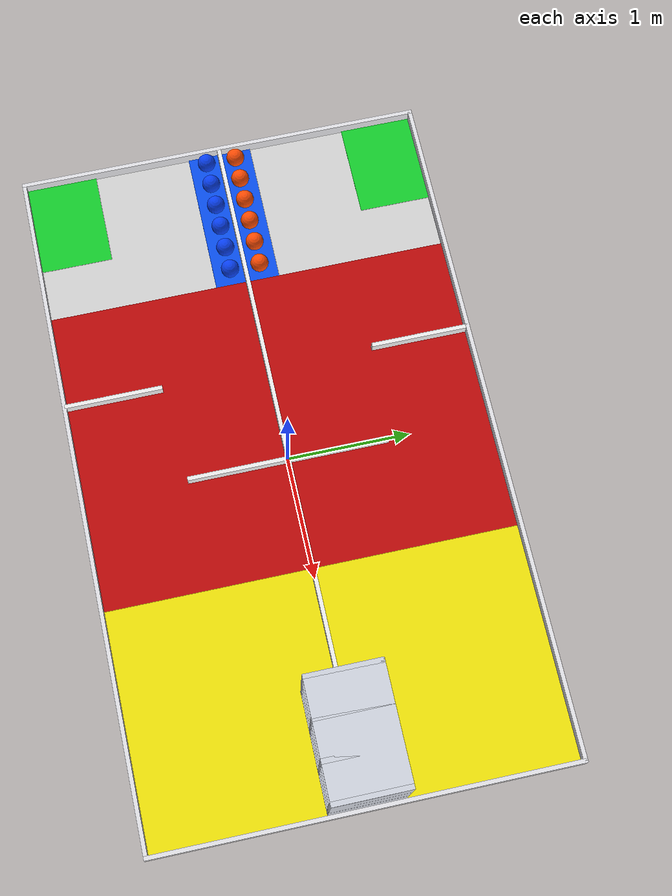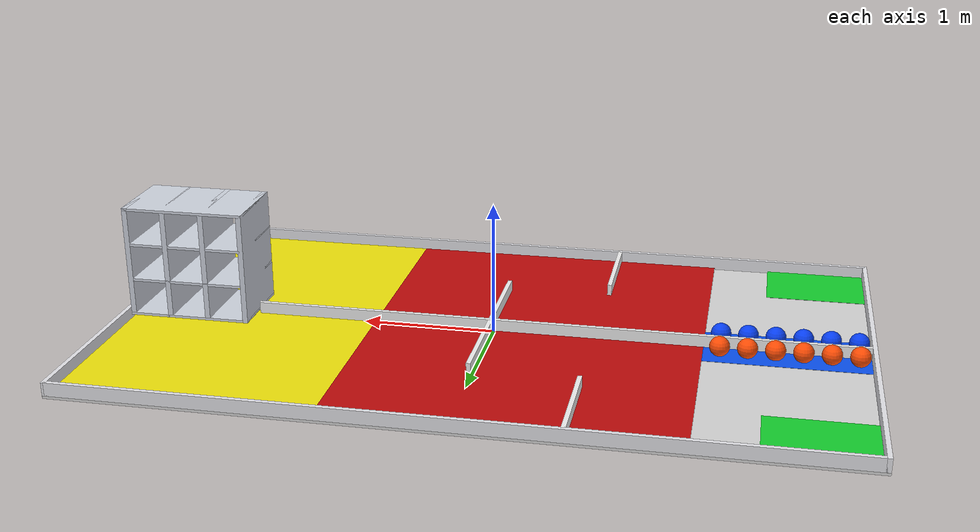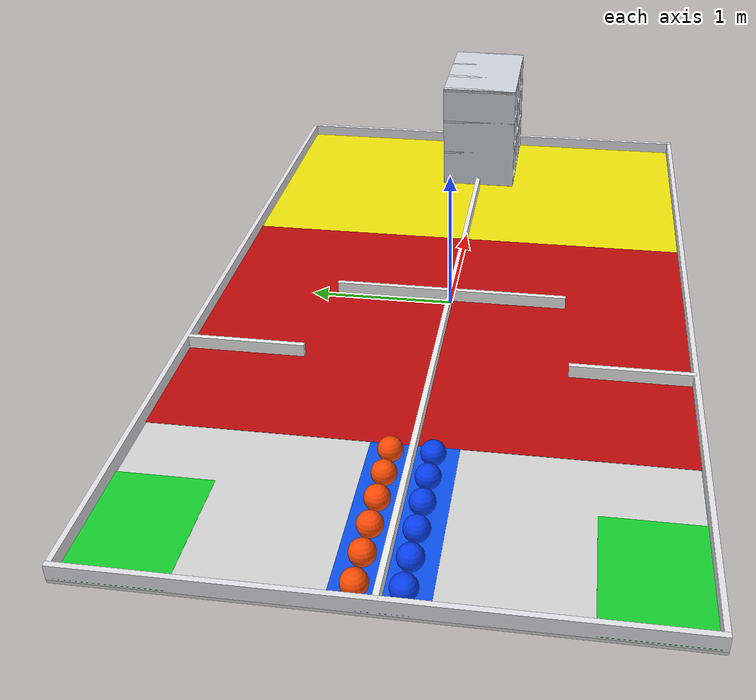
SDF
<?xml version="1.0"?>
<sdf version="1.9">
  <world name="robocon2026">
    <!-- Field-only validation does not need the 1 kHz integration used by
         the IMU model.  250 Hz is sufficient for 150 mm / 200 g notes and
         cuts idle rigid-body work to one quarter. -->
    <physics name="4ms_low_cpu" type="ignored">
      <max_step_size>0.004</max_step_size>
      <real_time_factor>1.0</real_time_factor>
      <real_time_update_rate>250</real_time_update_rate>
    </physics>
    <plugin filename="gz-sim-physics-system" name="gz::sim::systems::Physics"/>
    <plugin filename="gz-sim-user-commands-system" name="gz::sim::systems::UserCommands"/>
    <plugin filename="gz-sim-scene-broadcaster-system" name="gz::sim::systems::SceneBroadcaster">
      <!-- 15 Hz is sufficient for field inspection and avoids 60 Hz GUI state traffic. -->
      <state_hertz>15</state_hertz>
    </plugin>
    <gravity>0 0 -9.80665</gravity>
    <scene><ambient>0.8 0.8 0.8 1</ambient><background>0.65 0.78 0.9 1</background><shadows>false</shadows></scene>
    <light type="directional" name="sun"><pose>0 0 10 0 0 0</pose><direction>-0.4 0.2 -1</direction><diffuse>1 1 1 1</diffuse><cast_shadows>false</cast_shadows></light>
    <!-- Static-inspection GUI: avoid the heavyweight default plugin set. -->
    <gui fullscreen="0">
      <plugin filename="MinimalScene" name="3D View">
        <gz-gui><title>Robocon 2026 Field</title><property type="bool" key="showTitleBar">false</property><property type="string" key="state">docked</property></gz-gui>
        <engine>ogre2</engine><scene>scene</scene>
        <ambient_light>0.8 0.8 0.8</ambient_light><background_color>0.65 0.78 0.9</background_color>
        <camera_pose>-6 -6 7 0 0.72 0.78</camera_pose>
      </plugin>
      <plugin filename="GzSceneManager" name="Scene Manager"/>
    </gui>

    <!-- Coordinate convention: +X start -> bingo, +Y left, origin at field centre. -->
    <model name="competition_floor"><static>true</static><link name="floor">
      <collision name="floor_collision"><pose>0 0 -0.01 0 0 0</pose><geometry><box><size>5.638 3.376 0.02</size></box></geometry></collision>
      <visual name="base"><pose>0 0 -0.01 0 0 0</pose><geometry><box><size>5.638 3.376 0.02</size></box></geometry><material><ambient>0.72 0.72 0.72 1</ambient><diffuse>0.84 0.84 0.84 1</diffuse></material></visual>
      <!-- Zone overlays are visual-only and sit 11 mm above the base. -->
      <visual name="start_left"><pose>-2.419 1.369 0.011 0 0 0</pose><geometry><box><size>0.800 0.600 0.002</size></box></geometry><material><ambient>0.05 0.55 0.12 1</ambient><diffuse>0.08 0.82 0.18 1</diffuse></material></visual>
      <visual name="start_right"><pose>-2.419 -1.369 0.011 0 0 0</pose><geometry><box><size>0.800 0.600 0.002</size></box></geometry><material><ambient>0.05 0.55 0.12 1</ambient><diffuse>0.08 0.82 0.18 1</diffuse></material></visual>
      <visual name="notes_left"><pose>-2.199 0.1415 0.011 0 0 0</pose><geometry><box><size>1.240 0.250 0.002</size></box></geometry><material><ambient>0.03 0.20 0.62 1</ambient><diffuse>0.04 0.32 0.95 1</diffuse></material></visual>
      <visual name="notes_right"><pose>-2.199 -0.1415 0.011 0 0 0</pose><geometry><box><size>1.240 0.250 0.002</size></box></geometry><material><ambient>0.03 0.20 0.62 1</ambient><diffuse>0.04 0.32 0.95 1</diffuse></material></visual>
      <visual name="slalom"><pose>-0.330 0 0.011 0 0 0</pose><geometry><box><size>2.498 3.343 0.002</size></box></geometry><material><ambient>0.55 0.03 0.03 1</ambient><diffuse>0.75 0.04 0.04 1</diffuse></material></visual>
      <visual name="goal"><pose>1.869 0 0.011 0 0 0</pose><geometry><box><size>1.900 3.343 0.002</size></box></geometry><material><ambient>0.72 0.68 0.02 1</ambient><diffuse>0.95 0.90 0.04 1</diffuse></material></visual>
    </link></model>

    <!-- The dimensioned overhead drawing's 33 mm width is used.  Rule text
         section 3.2 separately says 38 mm; the conflict remains documented. -->
    <model name="field_walls"><static>true</static><link name="walls">
      <collision name="start_end"><pose>-2.8025 0 0.05 0 0 0</pose><geometry><box><size>0.033 3.376 0.1</size></box></geometry></collision>
      <collision name="bingo_end"><pose>2.8025 0 0.05 0 0 0</pose><geometry><box><size>0.033 3.376 0.1</size></box></geometry></collision>
      <collision name="left_side"><pose>0 1.6715 0.05 0 0 0</pose><geometry><box><size>5.605 0.033 0.1</size></box></geometry></collision>
      <collision name="right_side"><pose>0 -1.6715 0.05 0 0 0</pose><geometry><box><size>5.605 0.033 0.1</size></box></geometry></collision>
      <collision name="centre_to_bingo"><pose>-0.47825 0 0.05 0 0 0</pose><geometry><box><size>4.6485 0.033 0.1</size></box></geometry></collision>
      <!-- Three 800 mm slalom cells require two internal baffles per lane. -->
      <collision name="baffle_l1"><pose>-0.779 1.269 0.05 0 0 0</pose><geometry><box><size>0.033 0.800 0.1</size></box></geometry></collision>
      <collision name="baffle_r1"><pose>-0.779 -1.269 0.05 0 0 0</pose><geometry><box><size>0.033 0.800 0.1</size></box></geometry></collision>
      <collision name="baffle_l2"><pose>0.021 0.419 0.05 0 0 0</pose><geometry><box><size>0.033 0.800 0.1</size></box></geometry></collision>
      <collision name="baffle_r2"><pose>0.021 -0.419 0.05 0 0 0</pose><geometry><box><size>0.033 0.800 0.1</size></box></geometry></collision>
      <visual name="wall_visual"><geometry><box><size>0.001 0.001 0.001</size></box></geometry></visual>
      <visual name="v_start_end"><pose>-2.8025 0 0.05 0 0 0</pose><geometry><box><size>0.033 3.376 0.1</size></box></geometry><material><diffuse>0.9 0.9 0.92 1</diffuse></material></visual>
      <visual name="v_bingo_end"><pose>2.8025 0 0.05 0 0 0</pose><geometry><box><size>0.033 3.376 0.1</size></box></geometry><material><diffuse>0.9 0.9 0.92 1</diffuse></material></visual>
      <visual name="v_left_side"><pose>0 1.6715 0.05 0 0 0</pose><geometry><box><size>5.605 0.033 0.1</size></box></geometry><material><diffuse>0.9 0.9 0.92 1</diffuse></material></visual>
      <visual name="v_right_side"><pose>0 -1.6715 0.05 0 0 0</pose><geometry><box><size>5.605 0.033 0.1</size></box></geometry><material><diffuse>0.9 0.9 0.92 1</diffuse></material></visual>
      <visual name="v_centre_to_bingo"><pose>-0.47825 0 0.05 0 0 0</pose><geometry><box><size>4.6485 0.033 0.1</size></box></geometry><material><diffuse>0.95 0.95 0.95 1</diffuse></material></visual>
      <visual name="v_l1"><pose>-0.779 1.269 0.05 0 0 0</pose><geometry><box><size>0.033 0.800 0.1</size></box></geometry><material><diffuse>0.95 0.95 0.95 1</diffuse></material></visual>
      <visual name="v_r1"><pose>-0.779 -1.269 0.05 0 0 0</pose><geometry><box><size>0.033 0.800 0.1</size></box></geometry><material><diffuse>0.95 0.95 0.95 1</diffuse></material></visual>
      <visual name="v_l2"><pose>0.021 0.419 0.05 0 0 0</pose><geometry><box><size>0.033 0.800 0.1</size></box></geometry><material><diffuse>0.95 0.95 0.95 1</diffuse></material></visual>
      <visual name="v_r2"><pose>0.021 -0.419 0.05 0 0 0</pose><geometry><box><size>0.033 0.800 0.1</size></box></geometry><material><diffuse>0.95 0.95 0.95 1</diffuse></material></visual>
    </link></model>

    <model name="bingo"><static>true</static><pose>2.316 0 0 0 0 0</pose><link name="frame">
      <!-- Posts span z=40..900 mm; shelf gaps are exactly 260 mm. -->
      <collision name="post0"><pose>-0.45 0 0.47 0 0 0</pose><geometry><box><size>0.04 0.60 0.86</size></box></geometry></collision><visual name="post0v"><pose>-0.45 0 0.47 0 0 0</pose><geometry><box><size>0.04 0.60 0.86</size></box></geometry><material><diffuse>0.82 0.84 0.88 1</diffuse></material></visual>
      <collision name="post1"><pose>-0.15 0 0.47 0 0 0</pose><geometry><box><size>0.04 0.60 0.86</size></box></geometry></collision><visual name="post1v"><pose>-0.15 0 0.47 0 0 0</pose><geometry><box><size>0.04 0.60 0.86</size></box></geometry><material><diffuse>0.82 0.84 0.88 1</diffuse></material></visual>
      <collision name="post2"><pose>0.15 0 0.47 0 0 0</pose><geometry><box><size>0.04 0.60 0.86</size></box></geometry></collision><visual name="post2v"><pose>0.15 0 0.47 0 0 0</pose><geometry><box><size>0.04 0.60 0.86</size></box></geometry><material><diffuse>0.82 0.84 0.88 1</diffuse></material></visual>
      <collision name="post3"><pose>0.45 0 0.47 0 0 0</pose><geometry><box><size>0.04 0.60 0.86</size></box></geometry></collision><visual name="post3v"><pose>0.45 0 0.47 0 0 0</pose><geometry><box><size>0.04 0.60 0.86</size></box></geometry><material><diffuse>0.82 0.84 0.88 1</diffuse></material></visual>
      <collision name="shelf0"><pose>0 0 0.05 0 0 0</pose><geometry><box><size>0.94 0.60 0.02</size></box></geometry></collision><visual name="shelf0v"><pose>0 0 0.05 0 0 0</pose><geometry><box><size>0.94 0.60 0.02</size></box></geometry><material><diffuse>0.82 0.84 0.88 1</diffuse></material></visual>
      <collision name="shelf1"><pose>0 0 0.33 0 0 0</pose><geometry><box><size>0.94 0.60 0.02</size></box></geometry></collision><visual name="shelf1v"><pose>0 0 0.33 0 0 0</pose><geometry><box><size>0.94 0.60 0.02</size></box></geometry><material><diffuse>0.82 0.84 0.88 1</diffuse></material></visual>
      <collision name="shelf2"><pose>0 0 0.61 0 0 0</pose><geometry><box><size>0.94 0.60 0.02</size></box></geometry></collision><visual name="shelf2v"><pose>0 0 0.61 0 0 0</pose><geometry><box><size>0.94 0.60 0.02</size></box></geometry><material><diffuse>0.82 0.84 0.88 1</diffuse></material></visual>
      <collision name="shelf3"><pose>0 0 0.89 0 0 0</pose><geometry><box><size>0.94 0.60 0.02</size></box></geometry></collision><visual name="shelf3v"><pose>0 0 0.89 0 0 0</pose><geometry><box><size>0.94 0.60 0.02</size></box></geometry><material><diffuse>0.82 0.84 0.88 1</diffuse></material></visual>
    </link></model>

    <!-- Six 150 mm / 200 g notes per team, equally spaced on the two 250 mm
         notes strips beside the centre wall as shown by the overhead view. -->
    <model name="blue_note_0"><pose>-2.699 -0.125 0.075 0 0 0</pose><link name="note"><inertial><mass>0.2</mass><inertia><ixx>0.00045</ixx><iyy>0.00045</iyy><izz>0.00045</izz></inertia></inertial><collision name="c"><geometry><sphere><radius>0.075</radius></sphere></geometry></collision><visual name="v"><geometry><sphere><radius>0.075</radius></sphere></geometry><material><diffuse>0.03 0.25 0.95 1</diffuse></material></visual></link></model>
    <model name="blue_note_1"><pose>-2.499 -0.125 0.075 0 0 0</pose><link name="note"><inertial><mass>0.2</mass><inertia><ixx>0.00045</ixx><iyy>0.00045</iyy><izz>0.00045</izz></inertia></inertial><collision name="c"><geometry><sphere><radius>0.075</radius></sphere></geometry></collision><visual name="v"><geometry><sphere><radius>0.075</radius></sphere></geometry><material><diffuse>0.03 0.25 0.95 1</diffuse></material></visual></link></model>
    <model name="blue_note_2"><pose>-2.299 -0.125 0.075 0 0 0</pose><link name="note"><inertial><mass>0.2</mass><inertia><ixx>0.00045</ixx><iyy>0.00045</iyy><izz>0.00045</izz></inertia></inertial><collision name="c"><geometry><sphere><radius>0.075</radius></sphere></geometry></collision><visual name="v"><geometry><sphere><radius>0.075</radius></sphere></geometry><material><diffuse>0.03 0.25 0.95 1</diffuse></material></visual></link></model>
    <model name="blue_note_3"><pose>-2.099 -0.125 0.075 0 0 0</pose><link name="note"><inertial><mass>0.2</mass><inertia><ixx>0.00045</ixx><iyy>0.00045</iyy><izz>0.00045</izz></inertia></inertial><collision name="c"><geometry><sphere><radius>0.075</radius></sphere></geometry></collision><visual name="v"><geometry><sphere><radius>0.075</radius></sphere></geometry><material><diffuse>0.03 0.25 0.95 1</diffuse></material></visual></link></model>
    <model name="blue_note_4"><pose>-1.899 -0.125 0.075 0 0 0</pose><link name="note"><inertial><mass>0.2</mass><inertia><ixx>0.00045</ixx><iyy>0.00045</iyy><izz>0.00045</izz></inertia></inertial><collision name="c"><geometry><sphere><radius>0.075</radius></sphere></geometry></collision><visual name="v"><geometry><sphere><radius>0.075</radius></sphere></geometry><material><diffuse>0.03 0.25 0.95 1</diffuse></material></visual></link></model>
    <model name="blue_note_5"><pose>-1.699 -0.125 0.075 0 0 0</pose><link name="note"><inertial><mass>0.2</mass><inertia><ixx>0.00045</ixx><iyy>0.00045</iyy><izz>0.00045</izz></inertia></inertial><collision name="c"><geometry><sphere><radius>0.075</radius></sphere></geometry></collision><visual name="v"><geometry><sphere><radius>0.075</radius></sphere></geometry><material><diffuse>0.03 0.25 0.95 1</diffuse></material></visual></link></model>
    <model name="orange_note_0"><pose>-2.699 0.125 0.075 0 0 0</pose><link name="note"><inertial><mass>0.2</mass><inertia><ixx>0.00045</ixx><iyy>0.00045</iyy><izz>0.00045</izz></inertia></inertial><collision name="c"><geometry><sphere><radius>0.075</radius></sphere></geometry></collision><visual name="v"><geometry><sphere><radius>0.075</radius></sphere></geometry><material><diffuse>1 0.30 0.02 1</diffuse></material></visual></link></model>
    <model name="orange_note_1"><pose>-2.499 0.125 0.075 0 0 0</pose><link name="note"><inertial><mass>0.2</mass><inertia><ixx>0.00045</ixx><iyy>0.00045</iyy><izz>0.00045</izz></inertia></inertial><collision name="c"><geometry><sphere><radius>0.075</radius></sphere></geometry></collision><visual name="v"><geometry><sphere><radius>0.075</radius></sphere></geometry><material><diffuse>1 0.30 0.02 1</diffuse></material></visual></link></model>
    <model name="orange_note_2"><pose>-2.299 0.125 0.075 0 0 0</pose><link name="note"><inertial><mass>0.2</mass><inertia><ixx>0.00045</ixx><iyy>0.00045</iyy><izz>0.00045</izz></inertia></inertial><collision name="c"><geometry><sphere><radius>0.075</radius></sphere></geometry></collision><visual name="v"><geometry><sphere><radius>0.075</radius></sphere></geometry><material><diffuse>1 0.30 0.02 1</diffuse></material></visual></link></model>
    <model name="orange_note_3"><pose>-2.099 0.125 0.075 0 0 0</pose><link name="note"><inertial><mass>0.2</mass><inertia><ixx>0.00045</ixx><iyy>0.00045</iyy><izz>0.00045</izz></inertia></inertial><collision name="c"><geometry><sphere><radius>0.075</radius></sphere></geometry></collision><visual name="v"><geometry><sphere><radius>0.075</radius></sphere></geometry><material><diffuse>1 0.30 0.02 1</diffuse></material></visual></link></model>
    <model name="orange_note_4"><pose>-1.899 0.125 0.075 0 0 0</pose><link name="note"><inertial><mass>0.2</mass><inertia><ixx>0.00045</ixx><iyy>0.00045</iyy><izz>0.00045</izz></inertia></inertial><collision name="c"><geometry><sphere><radius>0.075</radius></sphere></geometry></collision><visual name="v"><geometry><sphere><radius>0.075</radius></sphere></geometry><material><diffuse>1 0.30 0.02 1</diffuse></material></visual></link></model>
    <model name="orange_note_5"><pose>-1.699 0.125 0.075 0 0 0</pose><link name="note"><inertial><mass>0.2</mass><inertia><ixx>0.00045</ixx><iyy>0.00045</iyy><izz>0.00045</izz></inertia></inertial><collision name="c"><geometry><sphere><radius>0.075</radius></sphere></geometry></collision><visual name="v"><geometry><sphere><radius>0.075</radius></sphere></geometry><material><diffuse>1 0.30 0.02 1</diffuse></material></visual></link></model>
  </world>
</sdf>
